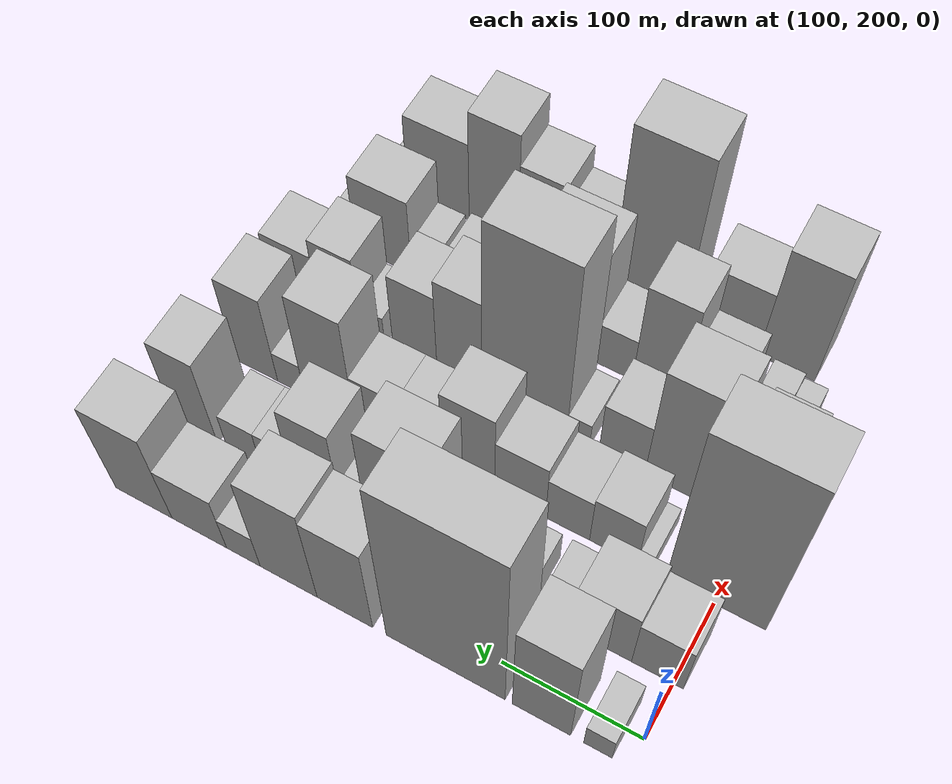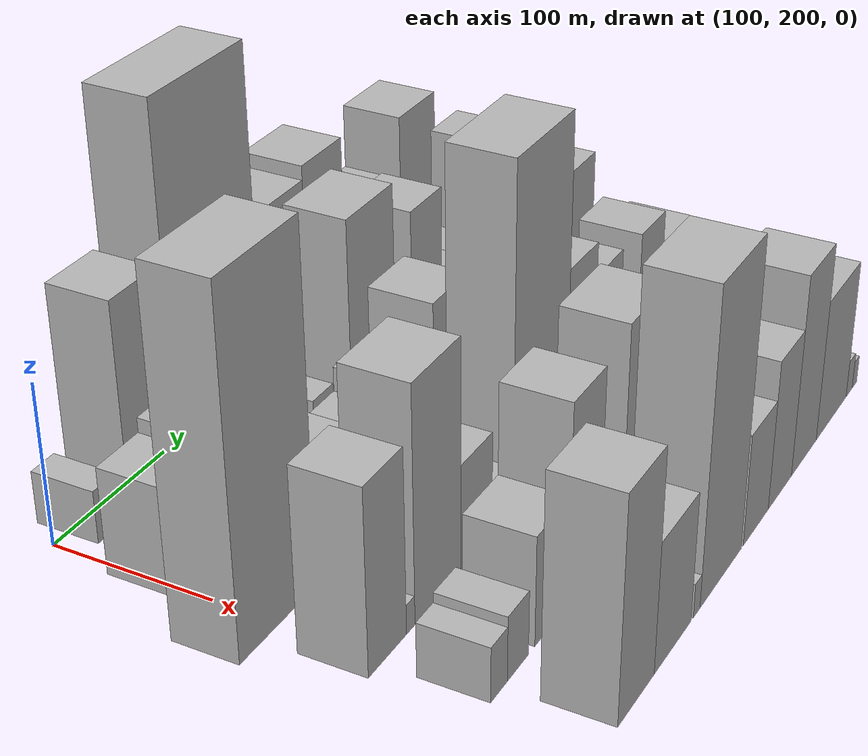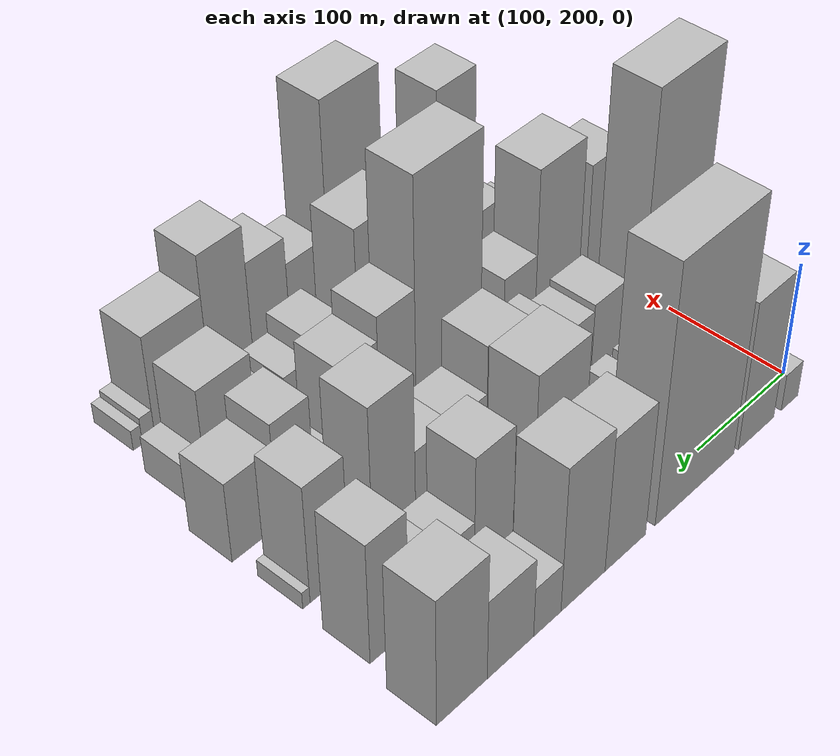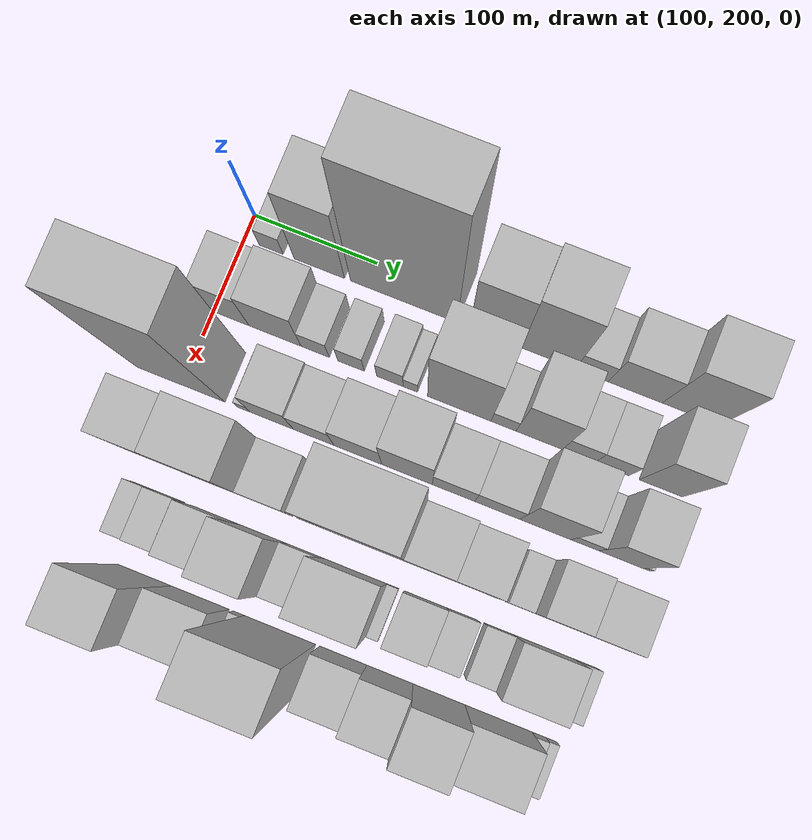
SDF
<sdf version="1.6">
 <world name="default">
  <model name="building_34">
   <static>1</static>
   <pose>100.0000 221.9123 0 0.000000 0.000000 0.000000</pose>
   <link name="link">
    <pose>0 0 16.50 0 0 0</pose>
    <collision name="collision"><geometry><box><size>40.0000 19.5130 33.0000</size></box></geometry></collision>
    <visual name="visual">
     <cast_shadows>0</cast_shadows>
     <geometry><box><size>40.0000 19.5130 33.0000</size></box></geometry>
     <material>
      <script>
       <uri>model://HANNAS_wall/materials/scripts</uri>
       <uri>model://HANNAS_wall/materials/textures</uri>
       <name>vrc/HANNAS_wall</name>
      </script>
     </material>
    </visual>
   </link>
  </model>
  <model name="building_35">
   <static>1</static>
   <pose>100.0000 261.0740 0 0.000000 0.000000 0.000000</pose>
   <link name="link">
    <pose>0 0 66.00 0 0 0</pose>
    <collision name="collision"><geometry><box><size>40.0000 40.8104 132.0000</size></box></geometry></collision>
    <visual name="visual">
     <cast_shadows>0</cast_shadows>
     <geometry><box><size>40.0000 40.8104 132.0000</size></box></geometry>
     <material>
      <script>
       <uri>model://HANNAS_wall/materials/scripts</uri>
       <uri>model://HANNAS_wall/materials/textures</uri>
       <name>vrc/HANNAS_wall</name>
      </script>
     </material>
    </visual>
   </link>
  </model>
  <model name="building_36">
   <static>1</static>
   <pose>100.0000 329.4109 0 0.000000 0.000000 0.000000</pose>
   <link name="link">
    <pose>0 0 112.50 0 0 0</pose>
    <collision name="collision"><geometry><box><size>40.0000 85.8635 225.0000</size></box></geometry></collision>
    <visual name="visual">
     <cast_shadows>0</cast_shadows>
     <geometry><box><size>40.0000 85.8635 225.0000</size></box></geometry>
     <material>
      <script>
       <uri>model://HANNAS_wall/materials/scripts</uri>
       <uri>model://HANNAS_wall/materials/textures</uri>
       <name>vrc/HANNAS_wall</name>
      </script>
     </material>
    </visual>
   </link>
  </model>
  <model name="building_37">
   <static>1</static>
   <pose>100.0000 403.0625 0 0.000000 0.000000 0.000000</pose>
   <link name="link">
    <pose>0 0 60.00 0 0 0</pose>
    <collision name="collision"><geometry><box><size>40.0000 41.4397 120.0000</size></box></geometry></collision>
    <visual name="visual">
     <cast_shadows>0</cast_shadows>
     <geometry><box><size>40.0000 41.4397 120.0000</size></box></geometry>
     <material>
      <script>
       <uri>model://HANNAS_wall/materials/scripts</uri>
       <uri>model://HANNAS_wall/materials/textures</uri>
       <name>vrc/HANNAS_wall</name>
      </script>
     </material>
    </visual>
   </link>
  </model>
  <model name="building_38">
   <static>1</static>
   <pose>100.0000 445.5145 0 0.000000 0.000000 0.000000</pose>
   <link name="link">
    <pose>0 0 64.50 0 0 0</pose>
    <collision name="collision"><geometry><box><size>40.0000 43.4644 129.0000</size></box></geometry></collision>
    <visual name="visual">
     <cast_shadows>0</cast_shadows>
     <geometry><box><size>40.0000 43.4644 129.0000</size></box></geometry>
     <material>
      <script>
       <uri>model://HANNAS_wall/materials/scripts</uri>
       <uri>model://HANNAS_wall/materials/textures</uri>
       <name>vrc/HANNAS_wall</name>
      </script>
     </material>
    </visual>
   </link>
  </model>
  <model name="building_39">
   <static>1</static>
   <pose>100.0000 480.3300 0 0.000000 0.000000 0.000000</pose>
   <link name="link">
    <pose>0 0 22.50 0 0 0</pose>
    <collision name="collision"><geometry><box><size>40.0000 26.1667 45.0000</size></box></geometry></collision>
    <visual name="visual">
     <cast_shadows>0</cast_shadows>
     <geometry><box><size>40.0000 26.1667 45.0000</size></box></geometry>
     <material>
      <script>
       <uri>model://HANNAS_wall/materials/scripts</uri>
       <uri>model://HANNAS_wall/materials/textures</uri>
       <name>vrc/HANNAS_wall</name>
      </script>
     </material>
    </visual>
   </link>
  </model>
  <model name="building_40">
   <static>1</static>
   <pose>100.0000 514.9063 0 0.000000 0.000000 0.000000</pose>
   <link name="link">
    <pose>0 0 36.00 0 0 0</pose>
    <collision name="collision"><geometry><box><size>40.0000 42.9859 72.0000</size></box></geometry></collision>
    <visual name="visual">
     <cast_shadows>0</cast_shadows>
     <geometry><box><size>40.0000 42.9859 72.0000</size></box></geometry>
     <material>
      <script>
       <uri>model://HANNAS_wall/materials/scripts</uri>
       <uri>model://HANNAS_wall/materials/textures</uri>
       <name>vrc/HANNAS_wall</name>
      </script>
     </material>
    </visual>
   </link>
  </model>
  <model name="building_41">
   <static>1</static>
   <pose>100.0000 558.9796 0 0.000000 0.000000 0.000000</pose>
   <link name="link">
    <pose>0 0 57.00 0 0 0</pose>
    <collision name="collision"><geometry><box><size>40.0000 45.1605 114.0000</size></box></geometry></collision>
    <visual name="visual">
     <cast_shadows>0</cast_shadows>
     <geometry><box><size>40.0000 45.1605 114.0000</size></box></geometry>
     <material>
      <script>
       <uri>model://HANNAS_wall/materials/scripts</uri>
       <uri>model://HANNAS_wall/materials/textures</uri>
       <name>vrc/HANNAS_wall</name>
      </script>
     </material>
    </visual>
   </link>
  </model>
  <model name="building_84">
   <static>1</static>
   <pose>160.0000 210.9812 0 0.000000 0.000000 0.000000</pose>
   <link name="link">
    <pose>0 0 33.00 0 0 0</pose>
    <collision name="collision"><geometry><box><size>40.0000 36.0424 66.0000</size></box></geometry></collision>
    <visual name="visual">
     <cast_shadows>0</cast_shadows>
     <geometry><box><size>40.0000 36.0424 66.0000</size></box></geometry>
     <material>
      <script>
       <uri>model://HANNAS_wall/materials/scripts</uri>
       <uri>model://HANNAS_wall/materials/textures</uri>
       <name>vrc/HANNAS_wall</name>
      </script>
     </material>
    </visual>
   </link>
  </model>
  <model name="building_85">
   <static>1</static>
   <pose>160.0000 250.0289 0 0.000000 0.000000 0.000000</pose>
   <link name="link">
    <pose>0 0 37.50 0 0 0</pose>
    <collision name="collision"><geometry><box><size>40.0000 42.0532 75.0000</size></box></geometry></collision>
    <visual name="visual">
     <cast_shadows>0</cast_shadows>
     <geometry><box><size>40.0000 42.0532 75.0000</size></box></geometry>
     <material>
      <script>
       <uri>model://HANNAS_wall/materials/scripts</uri>
       <uri>model://HANNAS_wall/materials/textures</uri>
       <name>vrc/HANNAS_wall</name>
      </script>
     </material>
    </visual>
   </link>
  </model>
  <model name="building_86">
   <static>1</static>
   <pose>160.0000 282.3852 0 0.000000 0.000000 0.000000</pose>
   <link name="link">
    <pose>0 0 19.50 0 0 0</pose>
    <collision name="collision"><geometry><box><size>40.0000 22.6594 39.0000</size></box></geometry></collision>
    <visual name="visual">
     <cast_shadows>0</cast_shadows>
     <geometry><box><size>40.0000 22.6594 39.0000</size></box></geometry>
     <material>
      <script>
       <uri>model://HANNAS_wall/materials/scripts</uri>
       <uri>model://HANNAS_wall/materials/textures</uri>
       <name>vrc/HANNAS_wall</name>
      </script>
     </material>
    </visual>
   </link>
  </model>
  <model name="building_87">
   <static>1</static>
   <pose>160.0000 311.2441 0 0.000000 0.000000 0.000000</pose>
   <link name="link">
    <pose>0 0 19.50 0 0 0</pose>
    <collision name="collision"><geometry><box><size>40.0000 21.0583 39.0000</size></box></geometry></collision>
    <visual name="visual">
     <cast_shadows>0</cast_shadows>
     <geometry><box><size>40.0000 21.0583 39.0000</size></box></geometry>
     <material>
      <script>
       <uri>model://HANNAS_wall/materials/scripts</uri>
       <uri>model://HANNAS_wall/materials/textures</uri>
       <name>vrc/HANNAS_wall</name>
      </script>
     </material>
    </visual>
   </link>
  </model>
  <model name="building_88">
   <static>1</static>
   <pose>160.0000 342.4402 0 0.000000 0.000000 0.000000</pose>
   <link name="link">
    <pose>0 0 19.50 0 0 0</pose>
    <collision name="collision"><geometry><box><size>40.0000 21.3340 39.0000</size></box></geometry></collision>
    <visual name="visual">
     <cast_shadows>0</cast_shadows>
     <geometry><box><size>40.0000 21.3340 39.0000</size></box></geometry>
     <material>
      <script>
       <uri>model://HANNAS_wall/materials/scripts</uri>
       <uri>model://HANNAS_wall/materials/textures</uri>
       <name>vrc/HANNAS_wall</name>
      </script>
     </material>
    </visual>
   </link>
  </model>
  <model name="building_89">
   <static>1</static>
   <pose>160.0000 358.8077 0 0.000000 0.000000 0.000000</pose>
   <link name="link">
    <pose>0 0 13.50 0 0 0</pose>
    <collision name="collision"><geometry><box><size>40.0000 11.4010 27.0000</size></box></geometry></collision>
    <visual name="visual">
     <cast_shadows>0</cast_shadows>
     <geometry><box><size>40.0000 11.4010 27.0000</size></box></geometry>
     <material>
      <script>
       <uri>model://HANNAS_wall/materials/scripts</uri>
       <uri>model://HANNAS_wall/materials/textures</uri>
       <name>vrc/HANNAS_wall</name>
      </script>
     </material>
    </visual>
   </link>
  </model>
  <model name="building_90">
   <static>1</static>
   <pose>160.0000 397.8116 0 0.000000 0.000000 0.000000</pose>
   <link name="link">
    <pose>0 0 66.00 0 0 0</pose>
    <collision name="collision"><geometry><box><size>40.0000 50.6069 132.0000</size></box></geometry></collision>
    <visual name="visual">
     <cast_shadows>0</cast_shadows>
     <geometry><box><size>40.0000 50.6069 132.0000</size></box></geometry>
     <material>
      <script>
       <uri>model://HANNAS_wall/materials/scripts</uri>
       <uri>model://HANNAS_wall/materials/textures</uri>
       <name>vrc/HANNAS_wall</name>
      </script>
     </material>
    </visual>
   </link>
  </model>
  <model name="building_91">
   <static>1</static>
   <pose>160.0000 433.1164 0 0.000000 0.000000 0.000000</pose>
   <link name="link">
    <pose>0 0 18.00 0 0 0</pose>
    <collision name="collision"><geometry><box><size>40.0000 20.0027 36.0000</size></box></geometry></collision>
    <visual name="visual">
     <cast_shadows>0</cast_shadows>
     <geometry><box><size>40.0000 20.0027 36.0000</size></box></geometry>
     <material>
      <script>
       <uri>model://HANNAS_wall/materials/scripts</uri>
       <uri>model://HANNAS_wall/materials/textures</uri>
       <name>vrc/HANNAS_wall</name>
      </script>
     </material>
    </visual>
   </link>
  </model>
  <model name="building_92">
   <static>1</static>
   <pose>160.0000 461.6123 0 0.000000 0.000000 0.000000</pose>
   <link name="link">
    <pose>0 0 52.50 0 0 0</pose>
    <collision name="collision"><geometry><box><size>40.0000 36.9890 105.0000</size></box></geometry></collision>
    <visual name="visual">
     <cast_shadows>0</cast_shadows>
     <geometry><box><size>40.0000 36.9890 105.0000</size></box></geometry>
     <material>
      <script>
       <uri>model://HANNAS_wall/materials/scripts</uri>
       <uri>model://HANNAS_wall/materials/textures</uri>
       <name>vrc/HANNAS_wall</name>
      </script>
     </material>
    </visual>
   </link>
  </model>
  <model name="building_93">
   <static>1</static>
   <pose>160.0000 492.9725 0 0.000000 0.000000 0.000000</pose>
   <link name="link">
    <pose>0 0 24.00 0 0 0</pose>
    <collision name="collision"><geometry><box><size>40.0000 25.7315 48.0000</size></box></geometry></collision>
    <visual name="visual">
     <cast_shadows>0</cast_shadows>
     <geometry><box><size>40.0000 25.7315 48.0000</size></box></geometry>
     <material>
      <script>
       <uri>model://HANNAS_wall/materials/scripts</uri>
       <uri>model://HANNAS_wall/materials/textures</uri>
       <name>vrc/HANNAS_wall</name>
      </script>
     </material>
    </visual>
   </link>
  </model>
  <model name="building_94">
   <static>1</static>
   <pose>160.0000 519.2498 0 0.000000 0.000000 0.000000</pose>
   <link name="link">
    <pose>0 0 24.00 0 0 0</pose>
    <collision name="collision"><geometry><box><size>40.0000 26.8231 48.0000</size></box></geometry></collision>
    <visual name="visual">
     <cast_shadows>0</cast_shadows>
     <geometry><box><size>40.0000 26.8231 48.0000</size></box></geometry>
     <material>
      <script>
       <uri>model://HANNAS_wall/materials/scripts</uri>
       <uri>model://HANNAS_wall/materials/textures</uri>
       <name>vrc/HANNAS_wall</name>
      </script>
     </material>
    </visual>
   </link>
  </model>
  <model name="building_95">
   <static>1</static>
   <pose>160.0000 557.7974 0 0.000000 0.000000 0.000000</pose>
   <link name="link">
    <pose>0 0 54.00 0 0 0</pose>
    <collision name="collision"><geometry><box><size>40.0000 34.2721 108.0000</size></box></geometry></collision>
    <visual name="visual">
     <cast_shadows>0</cast_shadows>
     <geometry><box><size>40.0000 34.2721 108.0000</size></box></geometry>
     <material>
      <script>
       <uri>model://HANNAS_wall/materials/scripts</uri>
       <uri>model://HANNAS_wall/materials/textures</uri>
       <name>vrc/HANNAS_wall</name>
      </script>
     </material>
    </visual>
   </link>
  </model>
  <model name="building_138">
   <static>1</static>
   <pose>220.0000 199.1259 0 0.000000 0.000000 0.000000</pose>
   <link name="link">
    <pose>0 0 106.50 0 0 0</pose>
    <collision name="collision"><geometry><box><size>40.0000 70.7351 213.0000</size></box></geometry></collision>
    <visual name="visual">
     <cast_shadows>0</cast_shadows>
     <geometry><box><size>40.0000 70.7351 213.0000</size></box></geometry>
     <material>
      <script>
       <uri>model://HANNAS_wall/materials/scripts</uri>
       <uri>model://HANNAS_wall/materials/textures</uri>
       <name>vrc/HANNAS_wall</name>
      </script>
     </material>
    </visual>
   </link>
  </model>
  <model name="building_139">
   <static>1</static>
   <pose>220.0000 249.5960 0 0.000000 0.000000 0.000000</pose>
   <link name="link">
    <pose>0 0 10.50 0 0 0</pose>
    <collision name="collision"><geometry><box><size>40.0000 10.2051 21.0000</size></box></geometry></collision>
    <visual name="visual">
     <cast_shadows>0</cast_shadows>
     <geometry><box><size>40.0000 10.2051 21.0000</size></box></geometry>
     <material>
      <script>
       <uri>model://HANNAS_wall/materials/scripts</uri>
       <uri>model://HANNAS_wall/materials/textures</uri>
       <name>vrc/HANNAS_wall</name>
      </script>
     </material>
    </visual>
   </link>
  </model>
  <model name="building_140">
   <static>1</static>
   <pose>220.0000 272.1469 0 0.000000 0.000000 0.000000</pose>
   <link name="link">
    <pose>0 0 31.50 0 0 0</pose>
    <collision name="collision"><geometry><box><size>40.0000 34.8967 63.0000</size></box></geometry></collision>
    <visual name="visual">
     <cast_shadows>0</cast_shadows>
     <geometry><box><size>40.0000 34.8967 63.0000</size></box></geometry>
     <material>
      <script>
       <uri>model://HANNAS_wall/materials/scripts</uri>
       <uri>model://HANNAS_wall/materials/textures</uri>
       <name>vrc/HANNAS_wall</name>
      </script>
     </material>
    </visual>
   </link>
  </model>
  <model name="building_141">
   <static>1</static>
   <pose>220.0000 305.8644 0 0.000000 0.000000 0.000000</pose>
   <link name="link">
    <pose>0 0 28.50 0 0 0</pose>
    <collision name="collision"><geometry><box><size>40.0000 32.5383 57.0000</size></box></geometry></collision>
    <visual name="visual">
     <cast_shadows>0</cast_shadows>
     <geometry><box><size>40.0000 32.5383 57.0000</size></box></geometry>
     <material>
      <script>
       <uri>model://HANNAS_wall/materials/scripts</uri>
       <uri>model://HANNAS_wall/materials/textures</uri>
       <name>vrc/HANNAS_wall</name>
      </script>
     </material>
    </visual>
   </link>
  </model>
  <model name="building_142">
   <static>1</static>
   <pose>220.0000 341.2232 0 0.000000 0.000000 0.000000</pose>
   <link name="link">
    <pose>0 0 36.00 0 0 0</pose>
    <collision name="collision"><geometry><box><size>40.0000 38.1792 72.0000</size></box></geometry></collision>
    <visual name="visual">
     <cast_shadows>0</cast_shadows>
     <geometry><box><size>40.0000 38.1792 72.0000</size></box></geometry>
     <material>
      <script>
       <uri>model://HANNAS_wall/materials/scripts</uri>
       <uri>model://HANNAS_wall/materials/textures</uri>
       <name>vrc/HANNAS_wall</name>
      </script>
     </material>
    </visual>
   </link>
  </model>
  <model name="building_143">
   <static>1</static>
   <pose>220.0000 380.2902 0 0.000000 0.000000 0.000000</pose>
   <link name="link">
    <pose>0 0 51.00 0 0 0</pose>
    <collision name="collision"><geometry><box><size>40.0000 39.9548 102.0000</size></box></geometry></collision>
    <visual name="visual">
     <cast_shadows>0</cast_shadows>
     <geometry><box><size>40.0000 39.9548 102.0000</size></box></geometry>
     <material>
      <script>
       <uri>model://HANNAS_wall/materials/scripts</uri>
       <uri>model://HANNAS_wall/materials/textures</uri>
       <name>vrc/HANNAS_wall</name>
      </script>
     </material>
    </visual>
   </link>
  </model>
  <model name="building_144">
   <static>1</static>
   <pose>220.0000 417.0339 0 0.000000 0.000000 0.000000</pose>
   <link name="link">
    <pose>0 0 30.00 0 0 0</pose>
    <collision name="collision"><geometry><box><size>40.0000 33.5327 60.0000</size></box></geometry></collision>
    <visual name="visual">
     <cast_shadows>0</cast_shadows>
     <geometry><box><size>40.0000 33.5327 60.0000</size></box></geometry>
     <material>
      <script>
       <uri>model://HANNAS_wall/materials/scripts</uri>
       <uri>model://HANNAS_wall/materials/textures</uri>
       <name>vrc/HANNAS_wall</name>
      </script>
     </material>
    </visual>
   </link>
  </model>
  <model name="building_145">
   <static>1</static>
   <pose>220.0000 451.5958 0 0.000000 0.000000 0.000000</pose>
   <link name="link">
    <pose>0 0 30.00 0 0 0</pose>
    <collision name="collision"><geometry><box><size>40.0000 35.5911 60.0000</size></box></geometry></collision>
    <visual name="visual">
     <cast_shadows>0</cast_shadows>
     <geometry><box><size>40.0000 35.5911 60.0000</size></box></geometry>
     <material>
      <script>
       <uri>model://HANNAS_wall/materials/scripts</uri>
       <uri>model://HANNAS_wall/materials/textures</uri>
       <name>vrc/HANNAS_wall</name>
      </script>
     </material>
    </visual>
   </link>
  </model>
  <model name="building_146">
   <static>1</static>
   <pose>220.0000 489.4604 0 0.000000 0.000000 0.000000</pose>
   <link name="link">
    <pose>0 0 64.50 0 0 0</pose>
    <collision name="collision"><geometry><box><size>40.0000 40.1381 129.0000</size></box></geometry></collision>
    <visual name="visual">
     <cast_shadows>0</cast_shadows>
     <geometry><box><size>40.0000 40.1381 129.0000</size></box></geometry>
     <material>
      <script>
       <uri>model://HANNAS_wall/materials/scripts</uri>
       <uri>model://HANNAS_wall/materials/textures</uri>
       <name>vrc/HANNAS_wall</name>
      </script>
     </material>
    </visual>
   </link>
  </model>
  <model name="building_147">
   <static>1</static>
   <pose>220.0000 520.4448 0 0.000000 0.000000 0.000000</pose>
   <link name="link">
    <pose>0 0 19.50 0 0 0</pose>
    <collision name="collision"><geometry><box><size>40.0000 21.8306 39.0000</size></box></geometry></collision>
    <visual name="visual">
     <cast_shadows>0</cast_shadows>
     <geometry><box><size>40.0000 21.8306 39.0000</size></box></geometry>
     <material>
      <script>
       <uri>model://HANNAS_wall/materials/scripts</uri>
       <uri>model://HANNAS_wall/materials/textures</uri>
       <name>vrc/HANNAS_wall</name>
      </script>
     </material>
    </visual>
   </link>
  </model>
  <model name="building_148">
   <static>1</static>
   <pose>220.0000 548.6330 0 0.000000 0.000000 0.000000</pose>
   <link name="link">
    <pose>0 0 52.50 0 0 0</pose>
    <collision name="collision"><geometry><box><size>40.0000 34.5458 105.0000</size></box></geometry></collision>
    <visual name="visual">
     <cast_shadows>0</cast_shadows>
     <geometry><box><size>40.0000 34.5458 105.0000</size></box></geometry>
     <material>
      <script>
       <uri>model://HANNAS_wall/materials/scripts</uri>
       <uri>model://HANNAS_wall/materials/textures</uri>
       <name>vrc/HANNAS_wall</name>
      </script>
     </material>
    </visual>
   </link>
  </model>
  <model name="building_149">
   <static>1</static>
   <pose>220.0000 569.1128 0 0.000000 0.000000 0.000000</pose>
   <link name="link">
    <pose>0 0 7.50 0 0 0</pose>
    <collision name="collision"><geometry><box><size>40.0000 6.4139 15.0000</size></box></geometry></collision>
    <visual name="visual">
     <cast_shadows>0</cast_shadows>
     <geometry><box><size>40.0000 6.4139 15.0000</size></box></geometry>
     <material>
      <script>
       <uri>model://HANNAS_wall/materials/scripts</uri>
       <uri>model://HANNAS_wall/materials/textures</uri>
       <name>vrc/HANNAS_wall</name>
      </script>
     </material>
    </visual>
   </link>
  </model>
  <model name="building_195">
   <static>1</static>
   <pose>280.0000 202.9950 0 0.000000 0.000000 0.000000</pose>
   <link name="link">
    <pose>0 0 55.50 0 0 0</pose>
    <collision name="collision"><geometry><box><size>40.0000 37.3125 111.0000</size></box></geometry></collision>
    <visual name="visual">
     <cast_shadows>0</cast_shadows>
     <geometry><box><size>40.0000 37.3125 111.0000</size></box></geometry>
     <material>
      <script>
       <uri>model://HANNAS_wall/materials/scripts</uri>
       <uri>model://HANNAS_wall/materials/textures</uri>
       <name>vrc/HANNAS_wall</name>
      </script>
     </material>
    </visual>
   </link>
  </model>
  <model name="building_196">
   <static>1</static>
   <pose>280.0000 225.9634 0 0.000000 0.000000 0.000000</pose>
   <link name="link">
    <pose>0 0 9.00 0 0 0</pose>
    <collision name="collision"><geometry><box><size>40.0000 8.6244 18.0000</size></box></geometry></collision>
    <visual name="visual">
     <cast_shadows>0</cast_shadows>
     <geometry><box><size>40.0000 8.6244 18.0000</size></box></geometry>
     <material>
      <script>
       <uri>model://HANNAS_wall/materials/scripts</uri>
       <uri>model://HANNAS_wall/materials/textures</uri>
       <name>vrc/HANNAS_wall</name>
      </script>
     </material>
    </visual>
   </link>
  </model>
  <model name="building_197">
   <static>1</static>
   <pose>280.0000 254.7320 0 0.000000 0.000000 0.000000</pose>
   <link name="link">
    <pose>0 0 70.50 0 0 0</pose>
    <collision name="collision"><geometry><box><size>40.0000 48.9128 141.0000</size></box></geometry></collision>
    <visual name="visual">
     <cast_shadows>0</cast_shadows>
     <geometry><box><size>40.0000 48.9128 141.0000</size></box></geometry>
     <material>
      <script>
       <uri>model://HANNAS_wall/materials/scripts</uri>
       <uri>model://HANNAS_wall/materials/textures</uri>
       <name>vrc/HANNAS_wall</name>
      </script>
     </material>
    </visual>
   </link>
  </model>
  <model name="building_198">
   <static>1</static>
   <pose>280.0000 296.3838 0 0.000000 0.000000 0.000000</pose>
   <link name="link">
    <pose>0 0 33.00 0 0 0</pose>
    <collision name="collision"><geometry><box><size>40.0000 34.3908 66.0000</size></box></geometry></collision>
    <visual name="visual">
     <cast_shadows>0</cast_shadows>
     <geometry><box><size>40.0000 34.3908 66.0000</size></box></geometry>
     <material>
      <script>
       <uri>model://HANNAS_wall/materials/scripts</uri>
       <uri>model://HANNAS_wall/materials/textures</uri>
       <name>vrc/HANNAS_wall</name>
      </script>
     </material>
    </visual>
   </link>
  </model>
  <model name="building_199">
   <static>1</static>
   <pose>280.0000 329.2919 0 0.000000 0.000000 0.000000</pose>
   <link name="link">
    <pose>0 0 15.00 0 0 0</pose>
    <collision name="collision"><geometry><box><size>40.0000 17.4253 30.0000</size></box></geometry></collision>
    <visual name="visual">
     <cast_shadows>0</cast_shadows>
     <geometry><box><size>40.0000 17.4253 30.0000</size></box></geometry>
     <material>
      <script>
       <uri>model://HANNAS_wall/materials/scripts</uri>
       <uri>model://HANNAS_wall/materials/textures</uri>
       <name>vrc/HANNAS_wall</name>
      </script>
     </material>
    </visual>
   </link>
  </model>
  <model name="building_200">
   <static>1</static>
   <pose>280.0000 370.8220 0 0.000000 0.000000 0.000000</pose>
   <link name="link">
    <pose>0 0 105.00 0 0 0</pose>
    <collision name="collision"><geometry><box><size>40.0000 65.6349 210.0000</size></box></geometry></collision>
    <visual name="visual">
     <cast_shadows>0</cast_shadows>
     <geometry><box><size>40.0000 65.6349 210.0000</size></box></geometry>
     <material>
      <script>
       <uri>model://HANNAS_wall/materials/scripts</uri>
       <uri>model://HANNAS_wall/materials/textures</uri>
       <name>vrc/HANNAS_wall</name>
      </script>
     </material>
    </visual>
   </link>
  </model>
  <model name="building_201">
   <static>1</static>
   <pose>280.0000 421.3502 0 0.000000 0.000000 0.000000</pose>
   <link name="link">
    <pose>0 0 58.50 0 0 0</pose>
    <collision name="collision"><geometry><box><size>40.0000 35.4216 117.0000</size></box></geometry></collision>
    <visual name="visual">
     <cast_shadows>0</cast_shadows>
     <geometry><box><size>40.0000 35.4216 117.0000</size></box></geometry>
     <material>
      <script>
       <uri>model://HANNAS_wall/materials/scripts</uri>
       <uri>model://HANNAS_wall/materials/textures</uri>
       <name>vrc/HANNAS_wall</name>
      </script>
     </material>
    </visual>
   </link>
  </model>
  <model name="building_202">
   <static>1</static>
   <pose>280.0000 456.6300 0 0.000000 0.000000 0.000000</pose>
   <link name="link">
    <pose>0 0 48.00 0 0 0</pose>
    <collision name="collision"><geometry><box><size>40.0000 35.1379 96.0000</size></box></geometry></collision>
    <visual name="visual">
     <cast_shadows>0</cast_shadows>
     <geometry><box><size>40.0000 35.1379 96.0000</size></box></geometry>
     <material>
      <script>
       <uri>model://HANNAS_wall/materials/scripts</uri>
       <uri>model://HANNAS_wall/materials/textures</uri>
       <name>vrc/HANNAS_wall</name>
      </script>
     </material>
    </visual>
   </link>
  </model>
  <model name="building_203">
   <static>1</static>
   <pose>280.0000 491.2097 0 0.000000 0.000000 0.000000</pose>
   <link name="link">
    <pose>0 0 18.00 0 0 0</pose>
    <collision name="collision"><geometry><box><size>40.0000 20.0214 36.0000</size></box></geometry></collision>
    <visual name="visual">
     <cast_shadows>0</cast_shadows>
     <geometry><box><size>40.0000 20.0214 36.0000</size></box></geometry>
     <material>
      <script>
       <uri>model://HANNAS_wall/materials/scripts</uri>
       <uri>model://HANNAS_wall/materials/textures</uri>
       <name>vrc/HANNAS_wall</name>
      </script>
     </material>
    </visual>
   </link>
  </model>
  <model name="building_204">
   <static>1</static>
   <pose>280.0000 518.0703 0 0.000000 0.000000 0.000000</pose>
   <link name="link">
    <pose>0 0 46.50 0 0 0</pose>
    <collision name="collision"><geometry><box><size>40.0000 33.6999 93.0000</size></box></geometry></collision>
    <visual name="visual">
     <cast_shadows>0</cast_shadows>
     <geometry><box><size>40.0000 33.6999 93.0000</size></box></geometry>
     <material>
      <script>
       <uri>model://HANNAS_wall/materials/scripts</uri>
       <uri>model://HANNAS_wall/materials/textures</uri>
       <name>vrc/HANNAS_wall</name>
      </script>
     </material>
    </visual>
   </link>
  </model>
  <model name="building_205">
   <static>1</static>
   <pose>280.0000 555.2270 0 0.000000 0.000000 0.000000</pose>
   <link name="link">
    <pose>0 0 36.00 0 0 0</pose>
    <collision name="collision"><geometry><box><size>40.0000 40.6135 72.0000</size></box></geometry></collision>
    <visual name="visual">
     <cast_shadows>0</cast_shadows>
     <geometry><box><size>40.0000 40.6135 72.0000</size></box></geometry>
     <material>
      <script>
       <uri>model://HANNAS_wall/materials/scripts</uri>
       <uri>model://HANNAS_wall/materials/textures</uri>
       <name>vrc/HANNAS_wall</name>
      </script>
     </material>
    </visual>
   </link>
  </model>
  <model name="building_251">
   <static>1</static>
   <pose>340.0000 204.4925 0 0.000000 0.000000 0.000000</pose>
   <link name="link">
    <pose>0 0 16.50 0 0 0</pose>
    <collision name="collision"><geometry><box><size>40.0000 17.3425 33.0000</size></box></geometry></collision>
    <visual name="visual">
     <cast_shadows>0</cast_shadows>
     <geometry><box><size>40.0000 17.3425 33.0000</size></box></geometry>
     <material>
      <script>
       <uri>model://HANNAS_wall/materials/scripts</uri>
       <uri>model://HANNAS_wall/materials/textures</uri>
       <name>vrc/HANNAS_wall</name>
      </script>
     </material>
    </visual>
   </link>
  </model>
  <model name="building_252">
   <static>1</static>
   <pose>340.0000 224.5221 0 0.000000 0.000000 0.000000</pose>
   <link name="link">
    <pose>0 0 19.50 0 0 0</pose>
    <collision name="collision"><geometry><box><size>40.0000 22.7167 39.0000</size></box></geometry></collision>
    <visual name="visual">
     <cast_shadows>0</cast_shadows>
     <geometry><box><size>40.0000 22.7167 39.0000</size></box></geometry>
     <material>
      <script>
       <uri>model://HANNAS_wall/materials/scripts</uri>
       <uri>model://HANNAS_wall/materials/textures</uri>
       <name>vrc/HANNAS_wall</name>
      </script>
     </material>
    </visual>
   </link>
  </model>
  <model name="building_253">
   <static>1</static>
   <pose>340.0000 261.8092 0 0.000000 0.000000 0.000000</pose>
   <link name="link">
    <pose>0 0 33.00 0 0 0</pose>
    <collision name="collision"><geometry><box><size>40.0000 37.8575 66.0000</size></box></geometry></collision>
    <visual name="visual">
     <cast_shadows>0</cast_shadows>
     <geometry><box><size>40.0000 37.8575 66.0000</size></box></geometry>
     <material>
      <script>
       <uri>model://HANNAS_wall/materials/scripts</uri>
       <uri>model://HANNAS_wall/materials/textures</uri>
       <name>vrc/HANNAS_wall</name>
      </script>
     </material>
    </visual>
   </link>
  </model>
  <model name="building_254">
   <static>1</static>
   <pose>340.0000 299.5461 0 0.000000 0.000000 0.000000</pose>
   <link name="link">
    <pose>0 0 60.00 0 0 0</pose>
    <collision name="collision"><geometry><box><size>40.0000 37.6163 120.0000</size></box></geometry></collision>
    <visual name="visual">
     <cast_shadows>0</cast_shadows>
     <geometry><box><size>40.0000 37.6163 120.0000</size></box></geometry>
     <material>
      <script>
       <uri>model://HANNAS_wall/materials/scripts</uri>
       <uri>model://HANNAS_wall/materials/textures</uri>
       <name>vrc/HANNAS_wall</name>
      </script>
     </material>
    </visual>
   </link>
  </model>
  <model name="building_255">
   <static>1</static>
   <pose>340.0000 332.5531 0 0.000000 0.000000 0.000000</pose>
   <link name="link">
    <pose>0 0 25.50 0 0 0</pose>
    <collision name="collision"><geometry><box><size>40.0000 28.3975 51.0000</size></box></geometry></collision>
    <visual name="visual">
     <cast_shadows>0</cast_shadows>
     <geometry><box><size>40.0000 28.3975 51.0000</size></box></geometry>
     <material>
      <script>
       <uri>model://HANNAS_wall/materials/scripts</uri>
       <uri>model://HANNAS_wall/materials/textures</uri>
       <name>vrc/HANNAS_wall</name>
      </script>
     </material>
    </visual>
   </link>
  </model>
  <model name="building_256">
   <static>1</static>
   <pose>340.0000 371.8886 0 0.000000 0.000000 0.000000</pose>
   <link name="link">
    <pose>0 0 64.50 0 0 0</pose>
    <collision name="collision"><geometry><box><size>40.0000 50.2736 129.0000</size></box></geometry></collision>
    <visual name="visual">
     <cast_shadows>0</cast_shadows>
     <geometry><box><size>40.0000 50.2736 129.0000</size></box></geometry>
     <material>
      <script>
       <uri>model://HANNAS_wall/materials/scripts</uri>
       <uri>model://HANNAS_wall/materials/textures</uri>
       <name>vrc/HANNAS_wall</name>
      </script>
     </material>
    </visual>
   </link>
  </model>
  <model name="building_257">
   <static>1</static>
   <pose>340.0000 401.5249 0 0.000000 0.000000 0.000000</pose>
   <link name="link">
    <pose>0 0 10.50 0 0 0</pose>
    <collision name="collision"><geometry><box><size>40.0000 8.9991 21.0000</size></box></geometry></collision>
    <visual name="visual">
     <cast_shadows>0</cast_shadows>
     <geometry><box><size>40.0000 8.9991 21.0000</size></box></geometry>
     <material>
      <script>
       <uri>model://HANNAS_wall/materials/scripts</uri>
       <uri>model://HANNAS_wall/materials/textures</uri>
       <name>vrc/HANNAS_wall</name>
      </script>
     </material>
    </visual>
   </link>
  </model>
  <model name="building_258">
   <static>1</static>
   <pose>340.0000 426.7669 0 0.000000 0.000000 0.000000</pose>
   <link name="link">
    <pose>0 0 31.50 0 0 0</pose>
    <collision name="collision"><geometry><box><size>40.0000 33.4849 63.0000</size></box></geometry></collision>
    <visual name="visual">
     <cast_shadows>0</cast_shadows>
     <geometry><box><size>40.0000 33.4849 63.0000</size></box></geometry>
     <material>
      <script>
       <uri>model://HANNAS_wall/materials/scripts</uri>
       <uri>model://HANNAS_wall/materials/textures</uri>
       <name>vrc/HANNAS_wall</name>
      </script>
     </material>
    </visual>
   </link>
  </model>
  <model name="building_259">
   <static>1</static>
   <pose>340.0000 455.6058 0 0.000000 0.000000 0.000000</pose>
   <link name="link">
    <pose>0 0 22.50 0 0 0</pose>
    <collision name="collision"><geometry><box><size>40.0000 24.1929 45.0000</size></box></geometry></collision>
    <visual name="visual">
     <cast_shadows>0</cast_shadows>
     <geometry><box><size>40.0000 24.1929 45.0000</size></box></geometry>
     <material>
      <script>
       <uri>model://HANNAS_wall/materials/scripts</uri>
       <uri>model://HANNAS_wall/materials/textures</uri>
       <name>vrc/HANNAS_wall</name>
      </script>
     </material>
    </visual>
   </link>
  </model>
  <model name="building_260">
   <static>1</static>
   <pose>340.0000 483.7920 0 0.000000 0.000000 0.000000</pose>
   <link name="link">
    <pose>0 0 19.50 0 0 0</pose>
    <collision name="collision"><geometry><box><size>40.0000 22.1795 39.0000</size></box></geometry></collision>
    <visual name="visual">
     <cast_shadows>0</cast_shadows>
     <geometry><box><size>40.0000 22.1795 39.0000</size></box></geometry>
     <material>
      <script>
       <uri>model://HANNAS_wall/materials/scripts</uri>
       <uri>model://HANNAS_wall/materials/textures</uri>
       <name>vrc/HANNAS_wall</name>
      </script>
     </material>
    </visual>
   </link>
  </model>
  <model name="building_261">
   <static>1</static>
   <pose>340.0000 518.3034 0 0.000000 0.000000 0.000000</pose>
   <link name="link">
    <pose>0 0 43.50 0 0 0</pose>
    <collision name="collision"><geometry><box><size>40.0000 46.8432 87.0000</size></box></geometry></collision>
    <visual name="visual">
     <cast_shadows>0</cast_shadows>
     <geometry><box><size>40.0000 46.8432 87.0000</size></box></geometry>
     <material>
      <script>
       <uri>model://HANNAS_wall/materials/scripts</uri>
       <uri>model://HANNAS_wall/materials/textures</uri>
       <name>vrc/HANNAS_wall</name>
      </script>
     </material>
    </visual>
   </link>
  </model>
  <model name="building_262">
   <static>1</static>
   <pose>340.0000 550.8392 0 0.000000 0.000000 0.000000</pose>
   <link name="link">
    <pose>0 0 16.50 0 0 0</pose>
    <collision name="collision"><geometry><box><size>40.0000 18.2283 33.0000</size></box></geometry></collision>
    <visual name="visual">
     <cast_shadows>0</cast_shadows>
     <geometry><box><size>40.0000 18.2283 33.0000</size></box></geometry>
     <material>
      <script>
       <uri>model://HANNAS_wall/materials/scripts</uri>
       <uri>model://HANNAS_wall/materials/textures</uri>
       <name>vrc/HANNAS_wall</name>
      </script>
     </material>
    </visual>
   </link>
  </model>
  <model name="building_308">
   <static>1</static>
   <pose>400.0000 229.3741 0 0.000000 0.000000 0.000000</pose>
   <link name="link">
    <pose>0 0 66.00 0 0 0</pose>
    <collision name="collision"><geometry><box><size>40.0000 42.6473 132.0000</size></box></geometry></collision>
    <visual name="visual">
     <cast_shadows>0</cast_shadows>
     <geometry><box><size>40.0000 42.6473 132.0000</size></box></geometry>
     <material>
      <script>
       <uri>model://HANNAS_wall/materials/scripts</uri>
       <uri>model://HANNAS_wall/materials/textures</uri>
       <name>vrc/HANNAS_wall</name>
      </script>
     </material>
    </visual>
   </link>
  </model>
  <model name="building_309">
   <static>1</static>
   <pose>400.0000 273.6935 0 0.000000 0.000000 0.000000</pose>
   <link name="link">
    <pose>0 0 39.00 0 0 0</pose>
    <collision name="collision"><geometry><box><size>40.0000 45.9915 78.0000</size></box></geometry></collision>
    <visual name="visual">
     <cast_shadows>0</cast_shadows>
     <geometry><box><size>40.0000 45.9915 78.0000</size></box></geometry>
     <material>
      <script>
       <uri>model://HANNAS_wall/materials/scripts</uri>
       <uri>model://HANNAS_wall/materials/textures</uri>
       <name>vrc/HANNAS_wall</name>
      </script>
     </material>
    </visual>
   </link>
  </model>
  <model name="building_310">
   <static>1</static>
   <pose>400.0000 304.0434 0 0.000000 0.000000 0.000000</pose>
   <link name="link">
    <pose>0 0 10.50 0 0 0</pose>
    <collision name="collision"><geometry><box><size>40.0000 8.7082 21.0000</size></box></geometry></collision>
    <visual name="visual">
     <cast_shadows>0</cast_shadows>
     <geometry><box><size>40.0000 8.7082 21.0000</size></box></geometry>
     <material>
      <script>
       <uri>model://HANNAS_wall/materials/scripts</uri>
       <uri>model://HANNAS_wall/materials/textures</uri>
       <name>vrc/HANNAS_wall</name>
      </script>
     </material>
    </visual>
   </link>
  </model>
  <model name="building_311">
   <static>1</static>
   <pose>400.0000 336.6620 0 0.000000 0.000000 0.000000</pose>
   <link name="link">
    <pose>0 0 93.00 0 0 0</pose>
    <collision name="collision"><geometry><box><size>40.0000 56.5290 186.0000</size></box></geometry></collision>
    <visual name="visual">
     <cast_shadows>0</cast_shadows>
     <geometry><box><size>40.0000 56.5290 186.0000</size></box></geometry>
     <material>
      <script>
       <uri>model://HANNAS_wall/materials/scripts</uri>
       <uri>model://HANNAS_wall/materials/textures</uri>
       <name>vrc/HANNAS_wall</name>
      </script>
     </material>
    </visual>
   </link>
  </model>
  <model name="building_312">
   <static>1</static>
   <pose>400.0000 386.3899 0 0.000000 0.000000 0.000000</pose>
   <link name="link">
    <pose>0 0 34.50 0 0 0</pose>
    <collision name="collision"><geometry><box><size>40.0000 36.9268 69.0000</size></box></geometry></collision>
    <visual name="visual">
     <cast_shadows>0</cast_shadows>
     <geometry><box><size>40.0000 36.9268 69.0000</size></box></geometry>
     <material>
      <script>
       <uri>model://HANNAS_wall/materials/scripts</uri>
       <uri>model://HANNAS_wall/materials/textures</uri>
       <name>vrc/HANNAS_wall</name>
      </script>
     </material>
    </visual>
   </link>
  </model>
  <model name="building_313">
   <static>1</static>
   <pose>400.0000 422.8890 0 0.000000 0.000000 0.000000</pose>
   <link name="link">
    <pose>0 0 46.50 0 0 0</pose>
    <collision name="collision"><geometry><box><size>40.0000 36.0714 93.0000</size></box></geometry></collision>
    <visual name="visual">
     <cast_shadows>0</cast_shadows>
     <geometry><box><size>40.0000 36.0714 93.0000</size></box></geometry>
     <material>
      <script>
       <uri>model://HANNAS_wall/materials/scripts</uri>
       <uri>model://HANNAS_wall/materials/textures</uri>
       <name>vrc/HANNAS_wall</name>
      </script>
     </material>
    </visual>
   </link>
  </model>
  <model name="building_314">
   <static>1</static>
   <pose>400.0000 461.1691 0 0.000000 0.000000 0.000000</pose>
   <link name="link">
    <pose>0 0 63.00 0 0 0</pose>
    <collision name="collision"><geometry><box><size>40.0000 40.4889 126.0000</size></box></geometry></collision>
    <visual name="visual">
     <cast_shadows>0</cast_shadows>
     <geometry><box><size>40.0000 40.4889 126.0000</size></box></geometry>
     <material>
      <script>
       <uri>model://HANNAS_wall/materials/scripts</uri>
       <uri>model://HANNAS_wall/materials/textures</uri>
       <name>vrc/HANNAS_wall</name>
      </script>
     </material>
    </visual>
   </link>
  </model>
  <model name="building_315">
   <static>1</static>
   <pose>400.0000 507.4646 0 0.000000 0.000000 0.000000</pose>
   <link name="link">
    <pose>0 0 45.00 0 0 0</pose>
    <collision name="collision"><geometry><box><size>40.0000 52.1020 90.0000</size></box></geometry></collision>
    <visual name="visual">
     <cast_shadows>0</cast_shadows>
     <geometry><box><size>40.0000 52.1020 90.0000</size></box></geometry>
     <material>
      <script>
       <uri>model://HANNAS_wall/materials/scripts</uri>
       <uri>model://HANNAS_wall/materials/textures</uri>
       <name>vrc/HANNAS_wall</name>
      </script>
     </material>
    </visual>
   </link>
  </model>
  <model name="building_316">
   <static>1</static>
   <pose>400.0000 538.9904 0 0.000000 0.000000 0.000000</pose>
   <link name="link">
    <pose>0 0 12.00 0 0 0</pose>
    <collision name="collision"><geometry><box><size>40.0000 10.9497 24.0000</size></box></geometry></collision>
    <visual name="visual">
     <cast_shadows>0</cast_shadows>
     <geometry><box><size>40.0000 10.9497 24.0000</size></box></geometry>
     <material>
      <script>
       <uri>model://HANNAS_wall/materials/scripts</uri>
       <uri>model://HANNAS_wall/materials/textures</uri>
       <name>vrc/HANNAS_wall</name>
      </script>
     </material>
    </visual>
   </link>
  </model>
  <model name="building_317">
   <static>1</static>
   <pose>400.0000 548.5576 0 0.000000 0.000000 0.000000</pose>
   <link name="link">
    <pose>0 0 9.00 0 0 0</pose>
    <collision name="collision"><geometry><box><size>40.0000 8.1847 18.0000</size></box></geometry></collision>
    <visual name="visual">
     <cast_shadows>0</cast_shadows>
     <geometry><box><size>40.0000 8.1847 18.0000</size></box></geometry>
     <material>
      <script>
       <uri>model://HANNAS_wall/materials/scripts</uri>
       <uri>model://HANNAS_wall/materials/textures</uri>
       <name>vrc/HANNAS_wall</name>
      </script>
     </material>
    </visual>
   </link>
  </model>
 </world>
</sdf>
